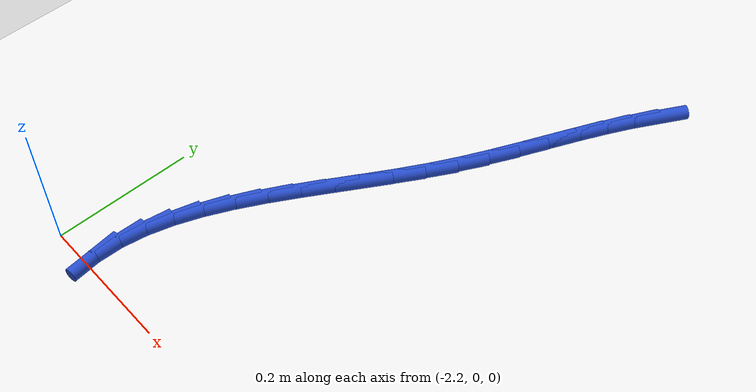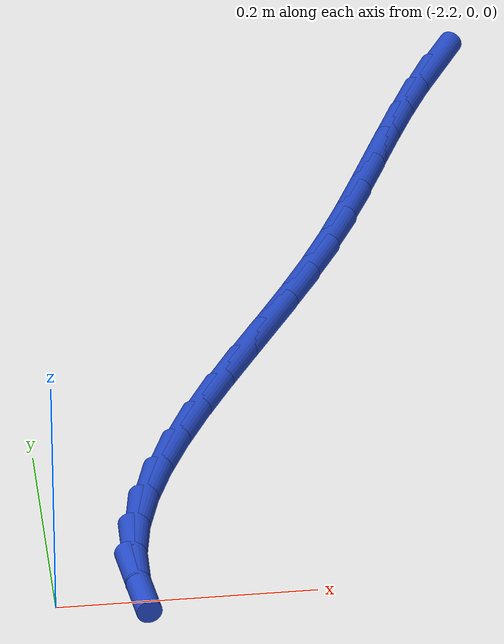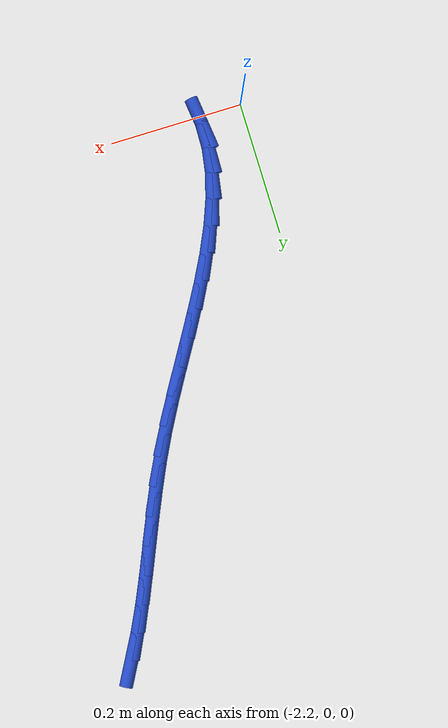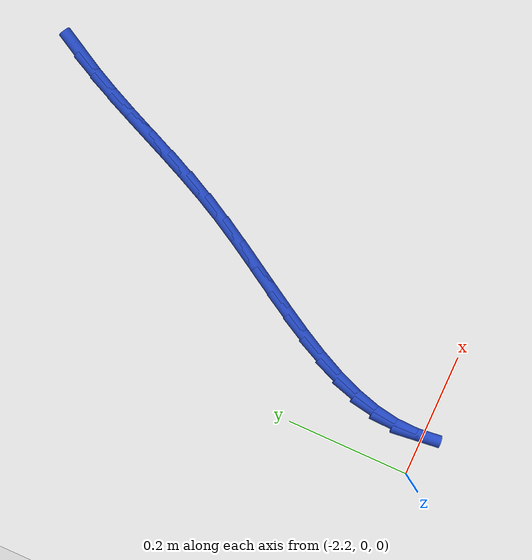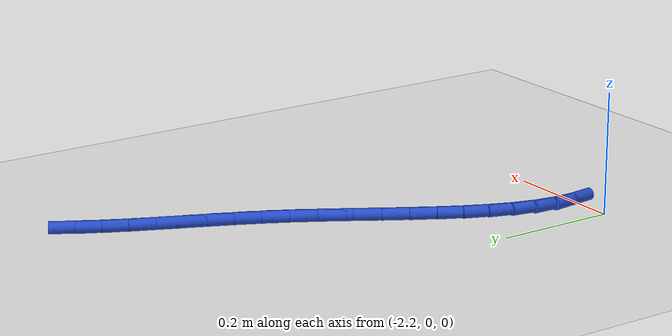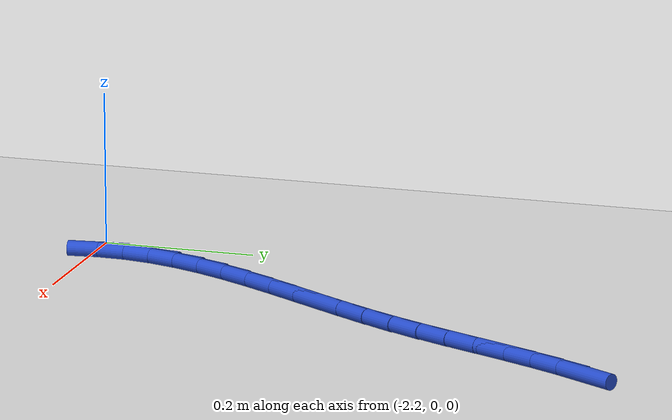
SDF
<sdf version="1.6">
 <world name="default">
  <model name="ground_plane">
   <static>1</static>
   <link name="link">
    <collision name="collision">
     <geometry><plane><normal>0 0 1</normal><size>100 100</size></plane></geometry>
     <surface><friction><ode><mu>100</mu><mu2>50</mu2></ode></friction></surface>
    </collision>
    <visual name="visual">
     <cast_shadows>0</cast_shadows>
     <geometry><plane><normal>0 0 1</normal><size>100 100</size></plane></geometry>
     <material>
      <script><uri>file://media/materials/scripts/gazebo.material</uri><name>Gazebo/WhiteGlow</name></script>
     </material>
    </visual>
   </link>
  </model>
  <model name="line">
   <link name="link_61">
    <pose>-1.8072998043067303 0.7378453806905475 0.01 0 1.57 1.0654611247885744</pose>
    <collision name="collision">
     <geometry><cylinder><radius>0.01</radius><length>0.08</length></cylinder></geometry>
    </collision>
    <visual name="visual">
     <material>
      <script><name>Gazebo/Blue</name><uri>file://media/materials/scripts/gazebo.material</uri></script>
     </material>
     <geometry><cylinder><radius>0.01</radius><length>0.08</length></cylinder></geometry>
    </visual>
   </link>
   <link name="link_62">
    <pose>-1.8269211223273498 0.7023798441466508 0.01 0 1.57 1.1122279318529793</pose>
    <collision name="collision">
     <geometry><cylinder><radius>0.01</radius><length>0.08</length></cylinder></geometry>
    </collision>
    <visual name="visual">
     <material>
      <script><name>Gazebo/Blue</name><uri>file://media/materials/scripts/gazebo.material</uri></script>
     </material>
     <geometry><cylinder><radius>0.01</radius><length>0.08</length></cylinder></geometry>
    </visual>
   </link>
   <link name="link_63">
    <pose>-1.8450912868313056 0.6655733245915731 0.01 0 1.57 1.1438739753772107</pose>
    <collision name="collision">
     <geometry><cylinder><radius>0.01</radius><length>0.08</length></cylinder></geometry>
    </collision>
    <visual name="visual">
     <material>
      <script><name>Gazebo/Blue</name><uri>file://media/materials/scripts/gazebo.material</uri></script>
     </material>
     <geometry><cylinder><radius>0.01</radius><length>0.08</length></cylinder></geometry>
    </visual>
   </link>
   <link name="link_64">
    <pose>-1.8623307155686009 0.627676247946817 0.01 0 1.57 1.1609545962941024</pose>
    <collision name="collision">
     <geometry><cylinder><radius>0.01</radius><length>0.08</length></cylinder></geometry>
    </collision>
    <visual name="visual">
     <material>
      <script><name>Gazebo/Blue</name><uri>file://media/materials/scripts/gazebo.material</uri></script>
     </material>
     <geometry><cylinder><radius>0.01</radius><length>0.08</length></cylinder></geometry>
    </visual>
   </link>
   <link name="link_65">
    <pose>-1.8791598262892375 0.5889390401338824 0.01 0 1.57 1.1640838647126117</pose>
    <collision name="collision">
     <geometry><cylinder><radius>0.01</radius><length>0.08</length></cylinder></geometry>
    </collision>
    <visual name="visual">
     <material>
      <script><name>Gazebo/Blue</name><uri>file://media/materials/scripts/gazebo.material</uri></script>
     </material>
     <geometry><cylinder><radius>0.01</radius><length>0.08</length></cylinder></geometry>
    </visual>
   </link>
   <link name="link_66">
    <pose>-1.8960990367432202 0.5496121270742709 0.01 0 1.57 1.1538293098801014</pose>
    <collision name="collision">
     <geometry><cylinder><radius>0.01</radius><length>0.08</length></cylinder></geometry>
    </collision>
    <visual name="visual">
     <material>
      <script><name>Gazebo/Blue</name><uri>file://media/materials/scripts/gazebo.material</uri></script>
     </material>
     <geometry><cylinder><radius>0.01</radius><length>0.08</length></cylinder></geometry>
    </visual>
   </link>
   <link name="link_67">
    <pose>-1.9136687646805495 0.5099459346894833 0.01 0 1.57 1.1306982845406508</pose>
    <collision name="collision">
     <geometry><cylinder><radius>0.01</radius><length>0.08</length></cylinder></geometry>
    </collision>
    <visual name="visual">
     <material>
      <script><name>Gazebo/Blue</name><uri>file://media/materials/scripts/gazebo.material</uri></script>
     </material>
     <geometry><cylinder><radius>0.01</radius><length>0.08</length></cylinder></geometry>
    </visual>
   </link>
   <link name="link_68">
    <pose>-1.9323894278512306 0.47019088890102106 0.01 0 1.57 1.0955273490663542</pose>
    <collision name="collision">
     <geometry><cylinder><radius>0.01</radius><length>0.08</length></cylinder></geometry>
    </collision>
    <visual name="visual">
     <material>
      <script><name>Gazebo/Blue</name><uri>file://media/materials/scripts/gazebo.material</uri></script>
     </material>
     <geometry><cylinder><radius>0.01</radius><length>0.08</length></cylinder></geometry>
    </visual>
   </link>
   <link name="link_69">
    <pose>-1.9527663912154003 0.4305941588736135 0.01 0 1.57 1.0601092812304787</pose>
    <collision name="collision">
     <geometry><cylinder><radius>0.01</radius><length>0.08</length></cylinder></geometry>
    </collision>
    <visual name="visual">
     <material>
      <script><name>Gazebo/Blue</name><uri>file://media/materials/scripts/gazebo.material</uri></script>
     </material>
     <geometry><cylinder><radius>0.01</radius><length>0.08</length></cylinder></geometry>
    </visual>
   </link>
   <link name="link_70">
    <pose>-1.9747865650582377 0.39129074315187184 0.01 0 1.57 1.037849866012137</pose>
    <collision name="collision">
     <geometry><cylinder><radius>0.01</radius><length>0.08</length></cylinder></geometry>
    </collision>
    <visual name="visual">
     <material>
      <script><name>Gazebo/Blue</name><uri>file://media/materials/scripts/gazebo.material</uri></script>
     </material>
     <geometry><cylinder><radius>0.01</radius><length>0.08</length></cylinder></geometry>
    </visual>
   </link>
   <link name="link_71">
    <pose>-1.9977996109234377 0.35227776788778786 0.01 0 1.57 1.0289329674795495</pose>
    <collision name="collision">
     <geometry><cylinder><radius>0.01</radius><length>0.08</length></cylinder></geometry>
    </collision>
    <visual name="visual">
     <material>
      <script><name>Gazebo/Blue</name><uri>file://media/materials/scripts/gazebo.material</uri></script>
     </material>
     <geometry><cylinder><radius>0.01</radius><length>0.08</length></cylinder></geometry>
    </visual>
   </link>
   <link name="link_72">
    <pose>-2.0211160613007526 0.3135438934398003 0.01 0 1.57 1.0332352668993912</pose>
    <collision name="collision">
     <geometry><cylinder><radius>0.01</radius><length>0.08</length></cylinder></geometry>
    </collision>
    <visual name="visual">
     <material>
      <script><name>Gazebo/Blue</name><uri>file://media/materials/scripts/gazebo.material</uri></script>
     </material>
     <geometry><cylinder><radius>0.01</radius><length>0.08</length></cylinder></geometry>
    </visual>
   </link>
   <link name="link_73">
    <pose>-2.044046448679936 0.27507778016634676 0.01 0 1.57 1.0512409808345036</pose>
    <collision name="collision">
     <geometry><cylinder><radius>0.01</radius><length>0.08</length></cylinder></geometry>
    </collision>
    <visual name="visual">
     <material>
      <script><name>Gazebo/Blue</name><uri>file://media/materials/scripts/gazebo.material</uri></script>
     </material>
     <geometry><cylinder><radius>0.01</radius><length>0.08</length></cylinder></geometry>
    </visual>
   </link>
   <link name="link_74">
    <pose>-2.06590130555074 0.23686808842586585 0.01 0 1.57 1.0840833535541032</pose>
    <collision name="collision">
     <geometry><cylinder><radius>0.01</radius><length>0.08</length></cylinder></geometry>
    </collision>
    <visual name="visual">
     <material>
      <script><name>Gazebo/Blue</name><uri>file://media/materials/scripts/gazebo.material</uri></script>
     </material>
     <geometry><cylinder><radius>0.01</radius><length>0.08</length></cylinder></geometry>
    </visual>
   </link>
   <link name="link_75">
    <pose>-2.0859911644029183 0.1989034785767954 0.01 0 1.57 1.1335674551650337</pose>
    <collision name="collision">
     <geometry><cylinder><radius>0.01</radius><length>0.08</length></cylinder></geometry>
    </collision>
    <visual name="visual">
     <material>
      <script><name>Gazebo/Blue</name><uri>file://media/materials/scripts/gazebo.material</uri></script>
     </material>
     <geometry><cylinder><radius>0.01</radius><length>0.08</length></cylinder></geometry>
    </visual>
   </link>
   <link name="link_76">
    <pose>-2.103626557726223 0.16117261097757327 0.01 0 1.57 1.2021107853215651</pose>
    <collision name="collision">
     <geometry><cylinder><radius>0.01</radius><length>0.08</length></cylinder></geometry>
    </collision>
    <visual name="visual">
     <material>
      <script><name>Gazebo/Blue</name><uri>file://media/materials/scripts/gazebo.material</uri></script>
     </material>
     <geometry><cylinder><radius>0.01</radius><length>0.08</length></cylinder></geometry>
    </visual>
   </link>
   <link name="link_77">
    <pose>-2.118118018010408 0.1236641459866382 0.01 0 1.57 1.292455541089089</pose>
    <collision name="collision">
     <geometry><cylinder><radius>0.01</radius><length>0.08</length></cylinder></geometry>
    </collision>
    <visual name="visual">
     <material>
      <script><name>Gazebo/Blue</name><uri>file://media/materials/scripts/gazebo.material</uri></script>
     </material>
     <geometry><cylinder><radius>0.01</radius><length>0.08</length></cylinder></geometry>
    </visual>
   </link>
   <link name="link_78">
    <pose>-2.1287760777452256 0.08636674396242769 0.01 0 1.57 1.4069003903501907</pose>
    <collision name="collision">
     <geometry><cylinder><radius>0.01</radius><length>0.08</length></cylinder></geometry>
    </collision>
    <visual name="visual">
     <material>
      <script><name>Gazebo/Blue</name><uri>file://media/materials/scripts/gazebo.material</uri></script>
     </material>
     <geometry><cylinder><radius>0.01</radius><length>0.08</length></cylinder></geometry>
    </visual>
   </link>
   <link name="link_79">
    <pose>-2.1349112694204284 0.049269065263380485 0.01 0 1.57 1.545348507665284</pose>
    <collision name="collision">
     <geometry><cylinder><radius>0.01</radius><length>0.08</length></cylinder></geometry>
    </collision>
    <visual name="visual">
     <material>
      <script><name>Gazebo/Blue</name><uri>file://media/materials/scripts/gazebo.material</uri></script>
     </material>
     <geometry><cylinder><radius>0.01</radius><length>0.08</length></cylinder></geometry>
    </visual>
   </link>
   <link name="link_80">
    <pose>-2.1358507743011708 0.012358158985812195 0.01 0 1.57 -1.4539024838471586</pose>
    <collision name="collision">
     <geometry><cylinder><radius>0.01</radius><length>0.08</length></cylinder></geometry>
    </collision>
    <visual name="visual">
     <material>
      <script><name>Gazebo/Blue</name><uri>file://media/materials/scripts/gazebo.material</uri></script>
     </material>
     <geometry><cylinder><radius>0.01</radius><length>0.08</length></cylinder></geometry>
    </visual>
   </link>
  </model>
 </world>
</sdf>
